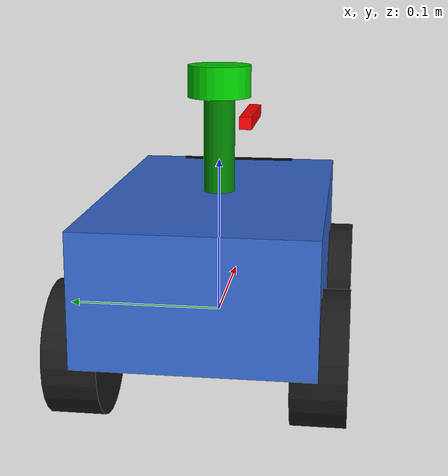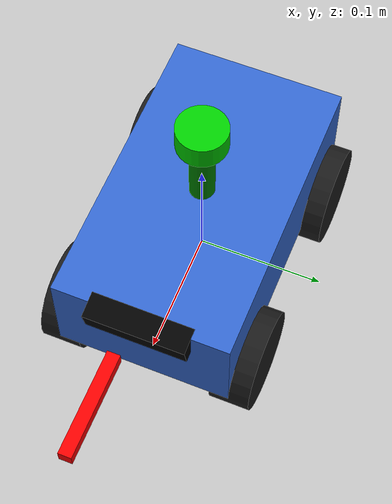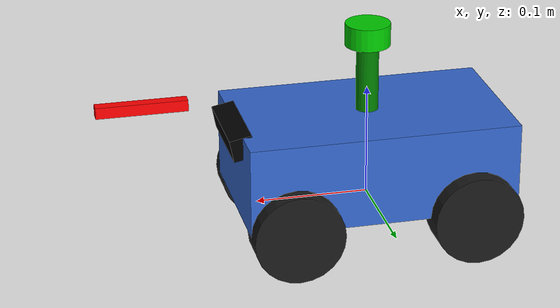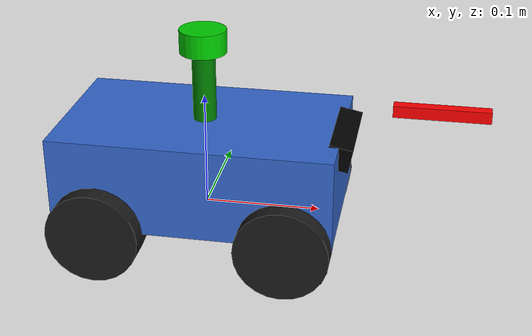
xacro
<?xml version="1.0"?>
<robot xmlns:xacro="http://www.ros.org/wiki/xacro" name="ackermann_laser">

    <!-- =============== 包含公共组件 =============== -->
    <xacro:include filename="$(find adam_description)/urdf/common/common_macros.xacro"/>
    <xacro:include filename="$(find adam_description)/urdf/common/common_inertia.xacro"/>

    <!-- =============== 包含传感器 =============== -->
    <xacro:include filename="$(find adam_description)/urdf/sensors/laser_2d.xacro"/>
    <xacro:include filename="$(find adam_description)/urdf/sensors/imu.xacro"/>
    <xacro:include filename="$(find adam_description)/urdf/sensors/mono_camera.xacro"/>

    <!-- =============== 包含插件 =============== -->
    <xacro:include filename="$(find adam_description)/urdf/plugins/ros2_control.xacro"/>
    <xacro:include filename="$(find adam_description)/urdf/plugins/gazebo_control.xacro"/>

    <!-- =============== 创建机器人 =============== -->

    <!-- base_footprint 虚 link -->
    <link name="base_footprint"/>

    <!-- base_link 主底盘 (长 240mm, 宽 140mm, 高 80mm) -->
    <joint name="base_joint" type="fixed">
        <parent link="base_footprint"/>
        <child link="base_link"/>
        <origin xyz="0 0 0.04" rpy="0 0 0"/>
    </joint>

    <link name="base_link">
        <visual>
            <origin xyz="0 0 0" rpy="0 0 0"/>
            <geometry>
                <box size="0.24 0.14 0.08"/>
            </geometry>
            <material name="base_material">
                <color rgba="0.2 0.4 0.8 1.0"/>
            </material>
        </visual>

        <collision>
            <origin xyz="0 0 0" rpy="0 0 0"/>
            <geometry>
                <box size="0.24 0.14 0.08"/>
            </geometry>
            <material name="base_material"/>
        </collision>

        <xacro:box_inertia m="1.5" w="0.24" h="0.08" d="0.14"/>
    </link>

    <gazebo reference="base_link">
        <material>Gazebo/Blue</material>
        <mu1>0.8</mu1>
        <mu2>0.8</mu2>
    </gazebo>

    <!-- =============== 轮子（视觉模型，无物理关节） =============== -->
    <!-- 前左轮 -->
    <link name="front_left_wheel_link">
        <visual>
            <origin xyz="0 0 0" rpy="1.57079 0 0"/>
            <geometry>
                <cylinder length="0.032" radius="0.04"/>
            </geometry>
            <material name="wheel_material">
                <color rgba="0.1 0.1 0.1 1.0"/>
            </material>
        </visual>
        <collision>
            <origin xyz="0 0 0" rpy="1.57079 0 0"/>
            <geometry>
                <cylinder length="0.032" radius="0.04"/>
            </geometry>
        </collision>
        <xacro:cylinder_inertia m="0.5" r="0.04" h="0.032"/>
    </link>

    <joint name="front_left_wheel_joint" type="fixed">
        <parent link="base_link"/>
        <child link="front_left_wheel_link"/>
        <origin xyz="0.08 0.07 -0.04" rpy="0 0 0"/>
    </joint>

    <gazebo reference="front_left_wheel_link">
        <material>Gazebo/Black</material>
        <mu1>1.0</mu1>
        <mu2>1.0</mu2>
    </gazebo>

    <!-- 前右轮 -->
    <link name="front_right_wheel_link">
        <visual>
            <origin xyz="0 0 0" rpy="1.57079 0 0"/>
            <geometry>
                <cylinder length="0.032" radius="0.04"/>
            </geometry>
            <material name="wheel_material">
                <color rgba="0.1 0.1 0.1 1.0"/>
            </material>
        </visual>
        <collision>
            <origin xyz="0 0 0" rpy="1.57079 0 0"/>
            <geometry>
                <cylinder length="0.032" radius="0.04"/>
            </geometry>
        </collision>
        <xacro:cylinder_inertia m="0.5" r="0.04" h="0.032"/>
    </link>

    <joint name="front_right_wheel_joint" type="fixed">
        <parent link="base_link"/>
        <child link="front_right_wheel_link"/>
        <origin xyz="0.08 -0.07 -0.04" rpy="0 0 0"/>
    </joint>

    <gazebo reference="front_right_wheel_link">
        <material>Gazebo/Black</material>
        <mu1>1.0</mu1>
        <mu2>1.0</mu2>
    </gazebo>

    <!-- 后左轮 -->
    <link name="rear_left_wheel_link">
        <visual>
            <origin xyz="0 0 0" rpy="1.57079 0 0"/>
            <geometry>
                <cylinder length="0.032" radius="0.04"/>
            </geometry>
            <material name="wheel_material">
                <color rgba="0.1 0.1 0.1 1.0"/>
            </material>
        </visual>
        <collision>
            <origin xyz="0 0 0" rpy="1.57079 0 0"/>
            <geometry>
                <cylinder length="0.032" radius="0.04"/>
            </geometry>
        </collision>
        <xacro:cylinder_inertia m="0.5" r="0.04" h="0.032"/>
    </link>

    <joint name="rear_left_wheel_joint" type="fixed">
        <parent link="base_link"/>
        <child link="rear_left_wheel_link"/>
        <origin xyz="-0.08 0.07 -0.04" rpy="0 0 0"/>
    </joint>

    <gazebo reference="rear_left_wheel_link">
        <material>Gazebo/Black</material>
        <mu1>1.0</mu1>
        <mu2>1.0</mu2>
    </gazebo>

    <!-- 后右轮 -->
    <link name="rear_right_wheel_link">
        <visual>
            <origin xyz="0 0 0" rpy="1.57079 0 0"/>
            <geometry>
                <cylinder length="0.032" radius="0.04"/>
            </geometry>
            <material name="wheel_material">
                <color rgba="0.1 0.1 0.1 1.0"/>
            </material>
        </visual>
        <collision>
            <origin xyz="0 0 0" rpy="1.57079 0 0"/>
            <geometry>
                <cylinder length="0.032" radius="0.04"/>
            </geometry>
        </collision>
        <xacro:cylinder_inertia m="0.5" r="0.04" h="0.032"/>
    </link>

    <joint name="rear_right_wheel_joint" type="fixed">
        <parent link="base_link"/>
        <child link="rear_right_wheel_link"/>
        <origin xyz="-0.08 -0.07 -0.04" rpy="0 0 0"/>
    </joint>

    <gazebo reference="rear_right_wheel_link">
        <material>Gazebo/Black</material>
        <mu1>1.0</mu1>
        <mu2>1.0</mu2>
    </gazebo>

    <!-- =============== 传感器安装 =============== -->

    <!-- 2D 激光雷达 (顶部中央) -->
    <xacro:laser_2d name="laser" parent="base_link">
        <origin xyz="0.0 0.0 0.06" rpy="0 0 0"/>
    </xacro:laser_2d>

    <!-- IMU (内部中央) -->
    <xacro:imu name="imu" parent="base_link">
        <origin xyz="0.0 0.0 0.02" rpy="0 0 0"/>
    </xacro:imu>

    <!-- 单目相机 (前部) -->
    <xacro:mono_camera name="camera" parent="base_link">
        <origin xyz="0.12 0.0 0.03" rpy="0 0.2 0"/>
    </xacro:mono_camera>

    <!-- 前向箭头（视觉指示） -->
    <link name="forward_arrow">
        <visual>
            <geometry>
                <box size="0.08 0.01 0.01"/>
            </geometry>
            <material name="arrow_material">
                <color rgba="1.0 0.0 0.0 1.0"/>
            </material>
            <origin xyz="0.20 0 0.06" rpy="0 0 0"/>
        </visual>
    </link>
    <joint name="forward_arrow_joint" type="fixed">
        <parent link="base_link"/>
        <child link="forward_arrow"/>
    </joint>

    <!-- =============== 应用插件 =============== -->
    <xacro:ros2_control/>
    <xacro:gazebo_control/>

</robot>

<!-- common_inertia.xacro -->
<robot xmlns:xacro="http://ros.org/wiki/xacro">

    <!-- 惯性矩阵计算公式 -->

    <!-- 长方体惯性矩阵 -->
    <xacro:macro name="box_inertia" params="m w h d">
        <inertial>
            <mass value="${m}" />
            <inertia ixx="${(m/12) * (h*h + d*d)}" ixy="0.0" ixz="0.0"
                     iyy="${(m/12) * (w*w + d*d)}" iyz="0.0"
                     izz="${(m/12) * (w*w + h*h)}" />
        </inertial>
    </xacro:macro>

    <!-- 圆柱体惯性矩阵 -->
    <xacro:macro name="cylinder_inertia" params="m r h">
        <inertial>
            <mass value="${m}" />
            <inertia ixx="${(m/12) * (3*r*r + h*h)}" ixy="0" ixz="0"
                     iyy="${(m/12) * (3*r*r + h*h)}" iyz="0"
                     izz="${(m/2) * (r*r)}" />
        </inertial>
    </xacro:macro>

    <!-- 球体惯性矩阵 -->
    <xacro:macro name="sphere_inertia" params="m r">
        <inertial>
            <mass value="${m}" />
            <inertia ixx="${(2/5) * m * (r*r)}" ixy="0.0" ixz="0.0"
                     iyy="${(2/5) * m * (r*r)}" iyz="0.0"
                     izz="${(2/5) * m * (r*r)}" />
        </inertial>
    </xacro:macro>

</robot>

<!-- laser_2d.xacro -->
<robot xmlns:xacro="http://www.ros.org/wiki/xacro">

    <xacro:include filename="$(find adam_description)/urdf/common/common_inertia.xacro"/>

    <!-- =============== 2D 激光雷达 =============== -->
    <xacro:macro name="laser_2d" params="name:='laser' parent:='base_link' *origin">

        <!-- 雷达支撑杆 -->
        <link name="${name}_support_link">
            <visual>
                <origin xyz="0 0 0" rpy="0 0 0"/>
                <geometry>
                    <cylinder length="0.10" radius="0.01"/>
                </geometry>
                <material name="support_material">
                    <color rgba="0.0 0.5 0.0 1.0"/>
                </material>
            </visual>
            <collision>
                <origin xyz="0 0 0" rpy="0 0 0"/>
                <geometry>
                    <cylinder length="0.10" radius="0.01"/>
                </geometry>
                <material name="support_material"/>
            </collision>
            <xacro:cylinder_inertia m="0.01" r="0.01" h="0.10"/>
        </link>

        <joint name="${name}_support_joint" type="fixed">
            <parent link="${parent}"/>
            <child link="${name}_support_link"/>
            <xacro:insert_block name="origin"/>
        </joint>

        <!-- 雷达头 -->
        <link name="${name}_link">
            <visual>
                <origin xyz="0 0 0" rpy="0 0 0"/>
                <geometry>
                    <cylinder length="0.02" radius="0.02"/>
                </geometry>
                <material name="laser_material">
                    <color rgba="0.0 0.8 0.0 1.0"/>
                </material>
            </visual>
            <collision>
                <origin xyz="0 0 0" rpy="0 0 0"/>
                <geometry>
                    <cylinder length="0.02" radius="0.02"/>
                </geometry>
                <material name="laser_material"/>
            </collision>
            <xacro:cylinder_inertia m="0.03" r="0.02" h="0.02"/>
        </link>

        <joint name="${name}_joint" type="fixed">
            <parent link="${name}_support_link"/>
            <child link="${name}_link"/>
            <origin xyz="0 0 0.05" rpy="0 0 0"/>
        </joint>

        <!-- Gazebo 传感器插件 -->
        <gazebo reference="${name}_link">
            <sensor type="ray" name="${name}_sensor">
                <plugin name="${name}_plugin" filename="libgazebo_ros_ray_sensor.so">
                    <ros>
                        <namespace>/</namespace>
                        <remapping>~/out:=/scan</remapping>
                    </ros>
                    <output_type>sensor_msgs/LaserScan</output_type>
                    <frame_name>${name}_link</frame_name>
                    <range_max>10.0</range_max>
                    <range_min>0.12</range_min>
                </plugin>
                <always_on>true</always_on>
                <visualize>true</visualize>
                <update_rate>10</update_rate>
                <pose>0 0 0 0 0 0</pose>
                <ray>
                    <scan>
                        <horizontal>
                            <samples>360</samples>
                            <resolution>1.0</resolution>
                            <min_angle>-3.14159</min_angle>
                            <max_angle>3.14159</max_angle>
                        </horizontal>
                    </scan>
                    <range>
                        <min>0.12</min>
                        <max>10.0</max>
                        <resolution>0.015</resolution>
                    </range>
                    <noise>
                        <type>gaussian</type>
                        <mean>0.0</mean>
                        <stddev>0.01</stddev>
                    </noise>
                </ray>
            </sensor>
        </gazebo>

    </xacro:macro>

</robot>

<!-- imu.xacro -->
<robot xmlns:xacro="http://www.ros.org/wiki/xacro">

    <xacro:include filename="$(find adam_description)/urdf/common/common_inertia.xacro"/>

    <!-- =============== IMU 传感器 =============== -->
    <xacro:macro name="imu" params="name:='imu' parent:='base_link' *origin">

        <link name="${name}_link">
            <visual>
                <origin xyz="0 0 0" rpy="0 0 0"/>
                <geometry>
                    <box size="0.02 0.02 0.02"/>
                </geometry>
                <material name="imu_material">
                    <color rgba="0.0 0.0 0.0 1.0"/>
                </material>
            </visual>
            <collision>
                <origin xyz="0 0 0" rpy="0 0 0"/>
                <geometry>
                    <box size="0.02 0.02 0.02"/>
                </geometry>
                <material name="imu_material"/>
            </collision>
            <xacro:box_inertia m="0.01" w="0.02" h="0.02" d="0.02"/>
        </link>

        <joint name="${name}_joint" type="fixed">
            <parent link="${parent}"/>
            <child link="${name}_link"/>
            <xacro:insert_block name="origin"/>
        </joint>

        <!-- Gazebo IMU 插件 -->
        <gazebo reference="${name}_link">
            <sensor name="${name}_sensor" type="imu">
                <plugin name="${name}_plugin" filename="libgazebo_ros_imu_sensor.so">
                    <ros>
                        <namespace>/</namespace>
                        <remapping>~/out:=/imu/data</remapping>
                    </ros>
                    <initial_orientation_as_reference>false</initial_orientation_as_reference>
                </plugin>
                <update_rate>100</update_rate>
                <always_on>true</always_on>
                <imu>
                    <angular_velocity>
                        <x>
                            <noise type="gaussian">
                                <mean>0.0</mean>
                                <stddev>2e-4</stddev>
                                <bias_mean>0.0000075</bias_mean>
                                <bias_stddev>0.0000008</bias_stddev>
                            </noise>
                        </x>
                        <y>
                            <noise type="gaussian">
                                <mean>0.0</mean>
                                <stddev>2e-4</stddev>
                                <bias_mean>0.0000075</bias_mean>
                                <bias_stddev>0.0000008</bias_stddev>
                            </noise>
                        </y>
                        <z>
                            <noise type="gaussian">
                                <mean>0.0</mean>
                                <stddev>2e-4</stddev>
                                <bias_mean>0.0000075</bias_mean>
                                <bias_stddev>0.0000008</bias_stddev>
                            </noise>
                        </z>
                    </angular_velocity>
                    <linear_acceleration>
                        <x>
                            <noise type="gaussian">
                                <mean>0.0</mean>
                                <stddev>1.7e-2</stddev>
                                <bias_mean>0.1</bias_mean>
                                <bias_stddev>0.001</bias_stddev>
                            </noise>
                        </x>
                        <y>
                            <noise type="gaussian">
                                <mean>0.0</mean>
                                <stddev>1.7e-2</stddev>
                                <bias_mean>0.1</bias_mean>
                                <bias_stddev>0.001</bias_stddev>
                            </noise>
                        </y>
                        <z>
                            <noise type="gaussian">
                                <mean>0.0</mean>
                                <stddev>1.7e-2</stddev>
                                <bias_mean>0.1</bias_mean>
                                <bias_stddev>0.001</bias_stddev>
                            </noise>
                        </z>
                    </linear_acceleration>
                </imu>
            </sensor>
        </gazebo>

    </xacro:macro>

</robot>

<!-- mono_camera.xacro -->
<robot xmlns:xacro="http://www.ros.org/wiki/xacro">

    <xacro:include filename="$(find adam_description)/urdf/common/common_inertia.xacro"/>

    <!-- =============== 单目相机 =============== -->
    <xacro:macro name="mono_camera" params="name:='camera' parent:='base_link' *origin">

        <!-- 相机本体 -->
        <link name="${name}_link">
            <visual>
                <origin xyz="0 0 0" rpy="0 0 0"/>
                <geometry>
                    <box size="0.02 0.08 0.02"/>
                </geometry>
                <material name="camera_material">
                    <color rgba="0.0 0.0 0.0 1.0"/>
                </material>
            </visual>
            <collision>
                <origin xyz="0 0 0" rpy="0 0 0"/>
                <geometry>
                    <box size="0.02 0.08 0.02"/>
                </geometry>
                <material name="camera_material"/>
            </collision>
            <xacro:box_inertia m="0.01" w="0.02" h="0.08" d="0.02"/>
        </link>

        <joint name="${name}_joint" type="fixed">
            <parent link="${parent}"/>
            <child link="${name}_link"/>
            <xacro:insert_block name="origin"/>
        </joint>

        <!-- 相机光学坐标系 -->
        <link name="${name}_optical_link"/>
        <joint name="${name}_optical_joint" type="fixed">
            <parent link="${name}_link"/>
            <child link="${name}_optical_link"/>
            <origin xyz="0 0 0" rpy="-1.57079 0 -1.57079"/>
        </joint>

        <!-- Gazebo 相机插件 -->
        <gazebo reference="${name}_link">
            <sensor type="camera" name="${name}_sensor">
                <plugin name="${name}_plugin" filename="libgazebo_ros_camera.so">
                    <ros>
                        <namespace>/</namespace>
                        <remapping>image_raw:=/${name}/image_raw</remapping>
                        <remapping>camera_info:=/${name}/camera_info</remapping>
                    </ros>
                    <frame_name>${name}_optical_link</frame_name>
                    <hack_baseline>0.0</hack_baseline>
                </plugin>
                <always_on>true</always_on>
                <update_rate>30</update_rate>
                <camera name="${name}">
                    <horizontal_fov>1.08559</horizontal_fov>
                    <image>
                        <width>640</width>
                        <height>480</height>
                        <format>R8G8B8</format>
                    </image>
                    <clip>
                        <near>0.1</near>
                        <far>100.0</far>
                    </clip>
                    <distortion>
                        <k1>0.0</k1>
                        <k2>0.0</k2>
                        <k3>0.0</k3>
                        <p1>0.0</p1>
                        <p2>0.0</p2>
                    </distortion>
                </camera>
            </sensor>
        </gazebo>

    </xacro:macro>

</robot>
